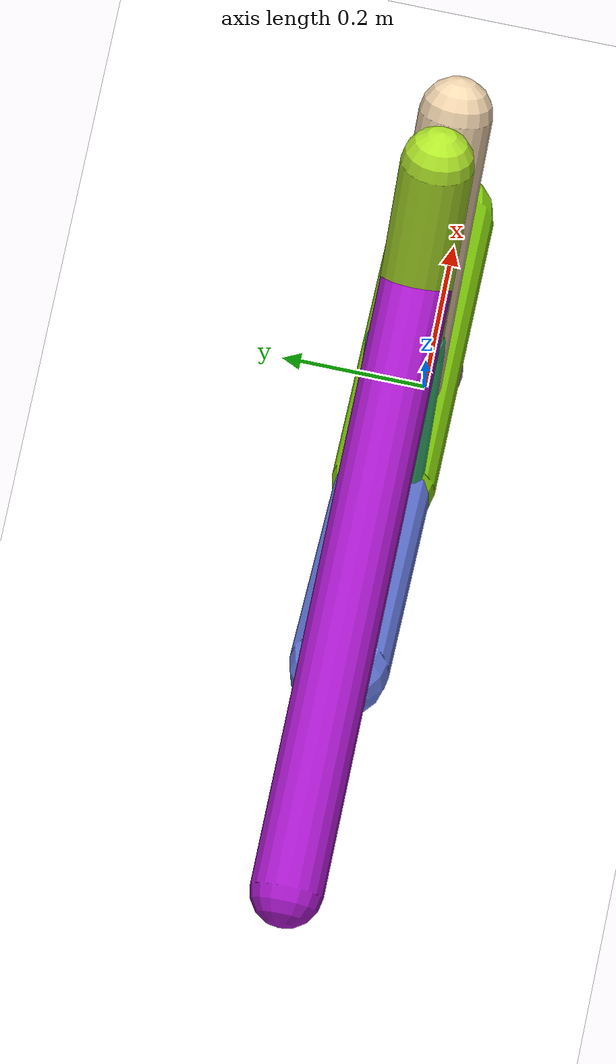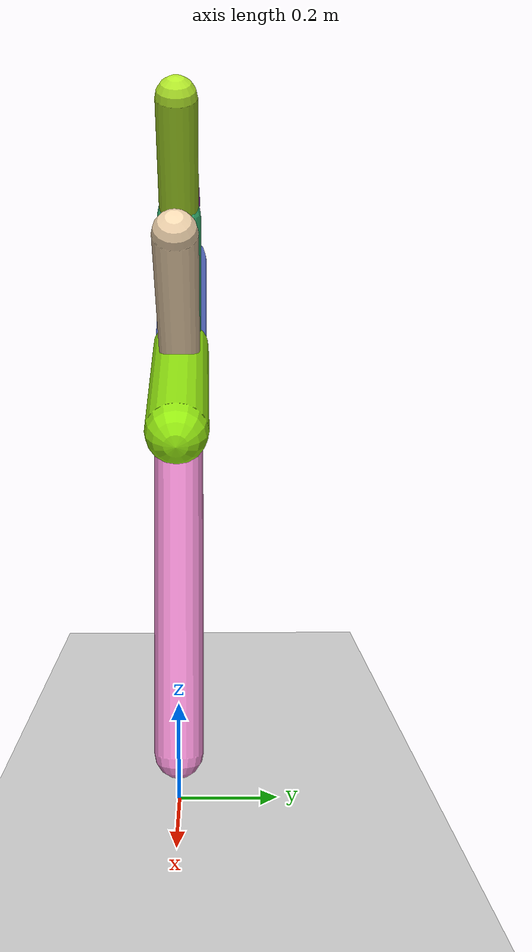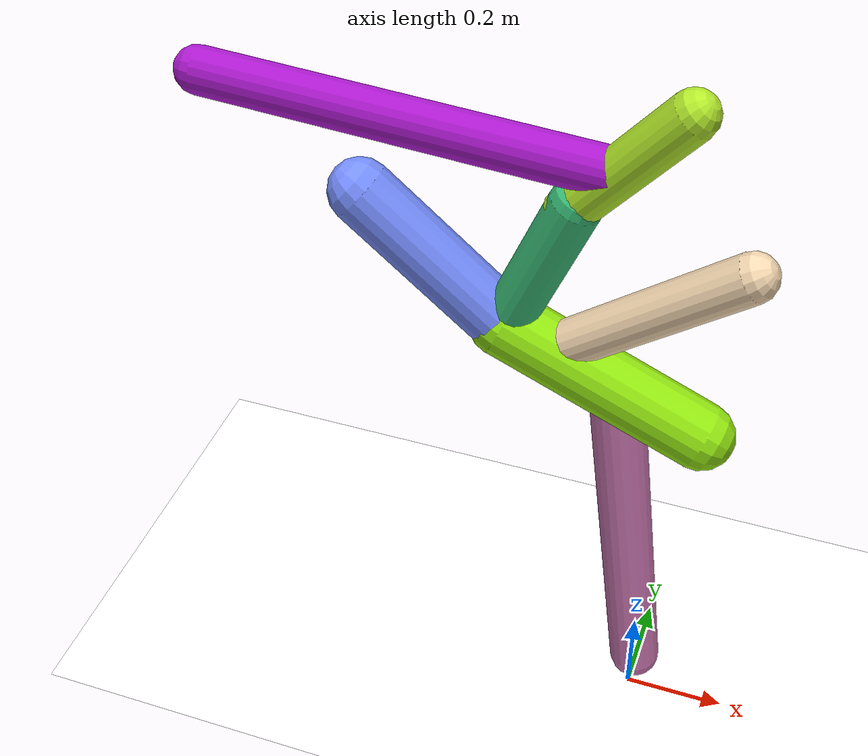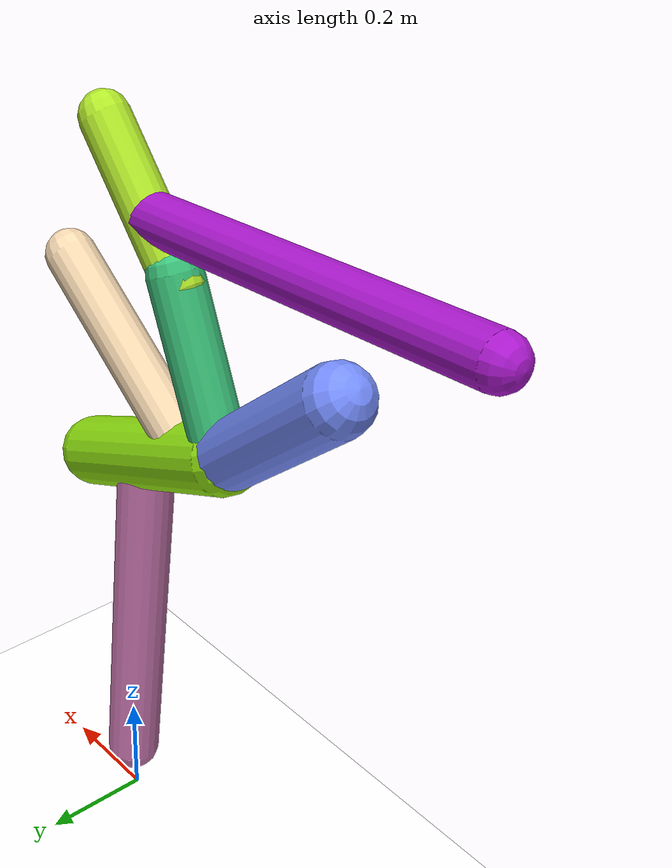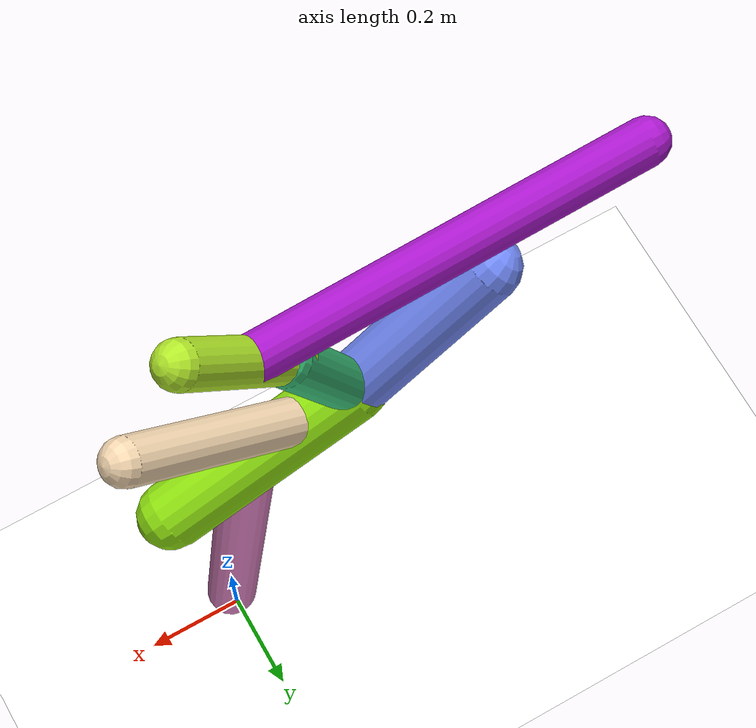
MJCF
<mujoco model="morphology">
  <option timestep="0.01"/>
  <default>
    <default class="/"/>
    <default class="0/"/>
    <default class="0/1/"/>
    <default class="0/1/2/"/>
    <default class="0/1/2/3/"/>
    <default class="0/1/2/3/4/"/>
    <default class="0/1/2/3/5/"/>
    <default class="0/6/"/>
  </default>
  <asset>
    <texture name="texplane" type="2d" builtin="checker" rgb1="0.10000000000000001 0.20000000000000001 0.29999999999999999" rgb2="0.20000000000000001 0.29999999999999999 0.40000000000000002" width="300" height="300"/>
    <material name="MatPlane" class="/" texture="texplane" texrepeat="20 20" specular="1" shininess="1" reflectance="0.5"/>
  </asset>
  <worldbody>
    <light name="//unnamed_light_0" class="/" directional="true" pos="0 0 1.5" dir="0 0 -1.3" cutoff="100" exponent="1" diffuse="1 1 1" specular="0.10000000000000001 0.10000000000000001 0.10000000000000001"/>
    <geom name="ground" class="/" type="plane" size="15 15 0.5" material="MatPlane" rgba="1 1 1 1"/>
    <site name="body" class="/" size="9.9999999999999995e-07 9.9999999999999995e-07 9.9999999999999995e-07" pos="0 0 1.3943629026412965"/>
    <body pos="0 0 1.3943629026412965" name="0/">
      <joint name="0/rootx/" class="/" type="slide" axis="1 0 0" limited="false" stiffness="0" armature="0" damping="0"/>
      <joint name="0/rootz/" class="/" type="slide" axis="0 0 1" limited="false" stiffness="0" armature="0" damping="0"/>
      <joint name="0/rooty/" class="/" type="hinge" axis="0 1 0" limited="false" stiffness="0" armature="0" damping="0"/>
      <geom name="0/geom" class="0/" type="capsule" contype="1" conaffinity="1" condim="3" size="0.041538621048823846" rgba="0.69019840540069544 0.89886280818461672 0.16216317925493495 1" friction="0.59999999999999998 0.10000000000000001 0.10000000000000001" fromto="0 0 0 -0.18243630396952026 0 -0.20931002850003899"/>
      <site name="0/end0" class="0/" size="0.0050000000000000001" pos="-0.18243630396952026 0 -0.20931002850003899"/>
      <site name="0/attach1" class="0/" size="9.9999999999999995e-07 9.9999999999999995e-07 9.9999999999999995e-07" pos="-0.1698546485440208 0 -0.19487503613070808"/>
      <body pos="-0.1698546485440208 0 -0.19487503613070808" name="0/1/">
        <joint name="0/1/joint/" class="0/" type="hinge" axis="0 1 0" limited="true" range="-54.920230684266834 54.920230684266834"/>
        <geom name="0/1/geom" class="0/1/" type="capsule" contype="1" conaffinity="1" condim="3" size="0.04589383743651182" rgba="0.22798713973876272 0.75872111246176466 0.47739360415567988 1" friction="0.59999999999999998 0.10000000000000001 0.10000000000000001" fromto="0 0 0 -0.12082674338088017 0 -0.2868135128301269"/>
        <site name="0/1/end1" class="0/1/" size="0.0050000000000000001" pos="-0.12082674338088017 0 -0.2868135128301269"/>
        <site name="0/1/attach2" class="0/1/" size="9.9999999999999995e-07 9.9999999999999995e-07 9.9999999999999995e-07" pos="-0.11726611313950686 0 -0.278361436420203"/>
        <body pos="-0.11726611313950686 0 -0.278361436420203" name="0/1/2/">
          <joint name="0/1/2/joint/" class="0/1/" type="hinge" axis="0 1 0" limited="true" range="-35.955133941912173 35.955133941912173"/>
          <geom name="0/1/2/geom" class="0/1/2/" type="capsule" contype="1" conaffinity="1" condim="3" size="0.057608208358288018" rgba="0.45660419839455624 0.55318109515012248 0.99393495384888408 1" friction="0.59999999999999998 0.10000000000000001 0.10000000000000001" fromto="0 0 0 -0.25539169778994508 0 0.21999863694531763"/>
          <site name="0/1/2/end2" class="0/1/2/" size="0.0050000000000000001" pos="-0.25539169778994508 0 0.21999863694531763"/>
          <site name="0/1/2/attach3" class="0/1/2/" size="9.9999999999999995e-07 9.9999999999999995e-07 9.9999999999999995e-07" pos="-0.0030144359019153195 0 0.0025966849953198002"/>
          <body pos="-0.0030144359019153195 0 0.0025966849953198002" name="0/1/2/3/">
            <joint name="0/1/2/3/joint/" class="0/1/2/" type="hinge" axis="0 1 0" limited="true" range="-41.841651489394039 41.841651489394039"/>
            <geom name="0/1/2/3/geom" class="0/1/2/3/" type="capsule" contype="1" conaffinity="1" condim="3" size="0.0620592156871018" rgba="0.57431814533940972 0.89879369231139306 0.061608338343649094 1" friction="0.59999999999999998 0.10000000000000001 0.10000000000000001" fromto="0 0 0 0.36786924520583897 0 -0.16262208865215189"/>
            <site name="0/1/2/3/end3" class="0/1/2/3/" size="0.0050000000000000001" pos="0.36786924520583897 0 -0.16262208865215189"/>
            <site name="0/1/2/3/attach4" class="0/1/2/3/" size="9.9999999999999995e-07 9.9999999999999995e-07 9.9999999999999995e-07" pos="0.087928473847771693 0 -0.038870093804987065"/>
            <body pos="0.087928473847771693 0 -0.038870093804987065" name="0/1/2/3/4/">
              <joint name="0/1/2/3/4/joint/" class="0/1/2/3/" type="hinge" axis="0 1 0" limited="true" range="-60.879906497324868 60.879906497324868"/>
              <geom name="0/1/2/3/4/geom" class="0/1/2/3/4/" type="capsule" contype="1" conaffinity="1" condim="3" size="0.043513341311890275" rgba="0.94884952896688801 0.836766747734486 0.68627749750055811 1" friction="0.59999999999999998 0.10000000000000001 0.10000000000000001" fromto="0 0 0 0.32505934984097218 0 0.24052907534019474"/>
              <site name="0/1/2/3/4/end4" class="0/1/2/3/4/" size="0.0050000000000000001" pos="0.32505934984097218 0 0.24052907534019474"/>
            </body>
            <site name="0/1/2/3/attach5" class="0/1/2/3/" size="9.9999999999999995e-07 9.9999999999999995e-07 9.9999999999999995e-07" pos="0.20986806994367149 0 -0.09277531166417291"/>
            <body pos="0.20986806994367149 0 -0.09277531166417291" name="0/1/2/3/5/">
              <joint name="0/1/2/3/5/joint/" class="0/1/2/3/" type="hinge" axis="0 1 0" limited="true" range="-67.355568009037952 67.355568009037952"/>
              <geom name="0/1/2/3/5/geom" class="0/1/2/3/5/" type="capsule" contype="1" conaffinity="1" condim="3" size="0.050058803220117548" rgba="0.89504763686420175 0.52631336526871475 0.78433503134960714 1" friction="0.59999999999999998 0.10000000000000001 0.10000000000000001" fromto="0 0 0 0.086682427272449569 0 -0.73094785850239563"/>
              <site name="0/1/2/3/5/end5" class="0/1/2/3/5/" size="0.0050000000000000001" pos="0.086682427272449569 0 -0.73094785850239563"/>
            </body>
          </body>
        </body>
      </body>
      <site name="0/attach6" class="0/" size="9.9999999999999995e-07 9.9999999999999995e-07 9.9999999999999995e-07" pos="-0.10869621885410878 0 -0.12470768246873189"/>
      <body pos="-0.10869621885410878 0 -0.12470768246873189" name="0/6/">
        <joint name="0/6/joint/" class="0/" type="hinge" axis="0 1 0" limited="true" range="-34.654909576688802 34.654909576688802"/>
        <geom name="0/6/geom" class="0/6/" type="capsule" contype="1" conaffinity="1" condim="3" size="0.041083748521710782" rgba="0.66019677031357094 0.091247268456081221 0.7923141112969162 1" friction="0.59999999999999998 0.10000000000000001 0.10000000000000001" fromto="0 0 0 -0.70753597122005907 0 0.047574592519988856"/>
        <site name="0/6/end6" class="0/6/" size="0.0050000000000000001" pos="-0.70753597122005907 0 0.047574592519988856"/>
      </body>
      <camera name="0/side" class="0/" mode="trackcom" pos="0.40000000000000002 -4 0.20000000000000001" quat="0.70699999999999996 0.70699999999999996 0 0"/>
    </body>
  </worldbody>
  <actuator>
    <motor name="0/1/motor" class="0/1/" ctrllimited="true" ctrlrange="-1 1" gear="70" joint="0/1/joint/"/>
    <motor name="0/1/2/motor" class="0/1/2/" ctrllimited="true" ctrlrange="-1 1" gear="65" joint="0/1/2/joint/"/>
    <motor name="0/1/2/3/motor" class="0/1/2/3/" ctrllimited="true" ctrlrange="-1 1" gear="69" joint="0/1/2/3/joint/"/>
    <motor name="0/1/2/3/4/motor" class="0/1/2/3/4/" ctrllimited="true" ctrlrange="-1 1" gear="53" joint="0/1/2/3/4/joint/"/>
    <motor name="0/1/2/3/5/motor" class="0/1/2/3/5/" ctrllimited="true" ctrlrange="-1 1" gear="78" joint="0/1/2/3/5/joint/"/>
    <motor name="0/6/motor" class="0/6/" ctrllimited="true" ctrlrange="-1 1" gear="55" joint="0/6/joint/"/>
  </actuator>
  <sensor>
    <subtreelinvel name="velocity" body="0/"/>
  </sensor>
</mujoco>
